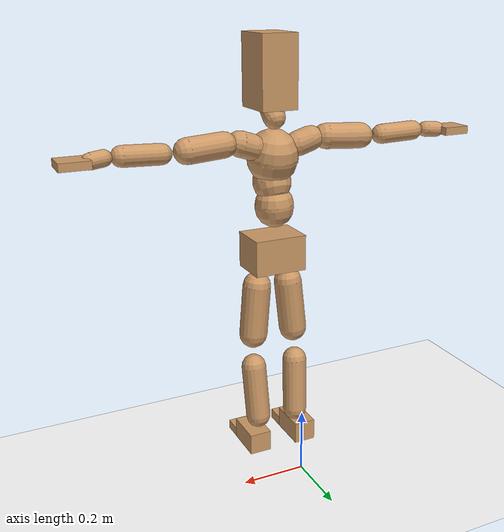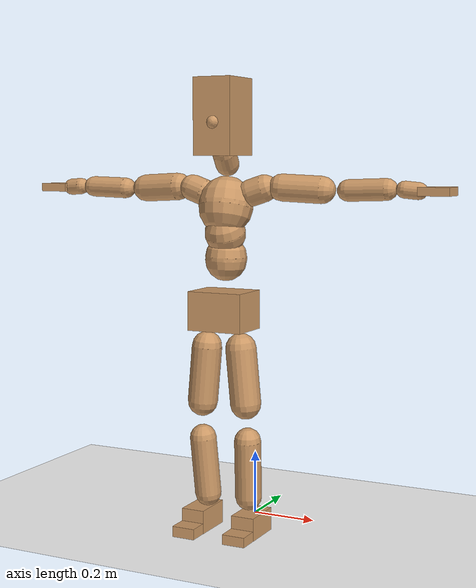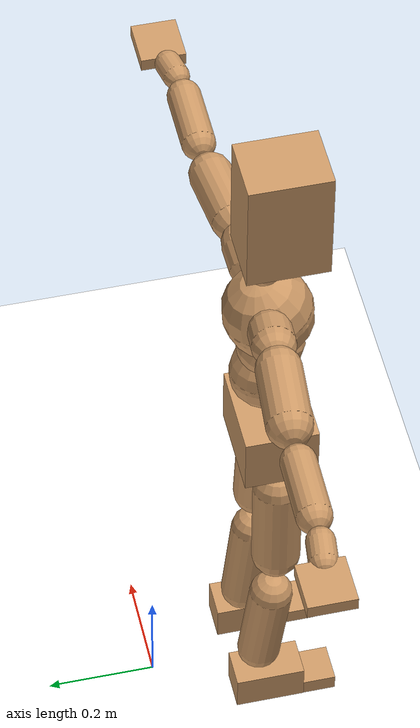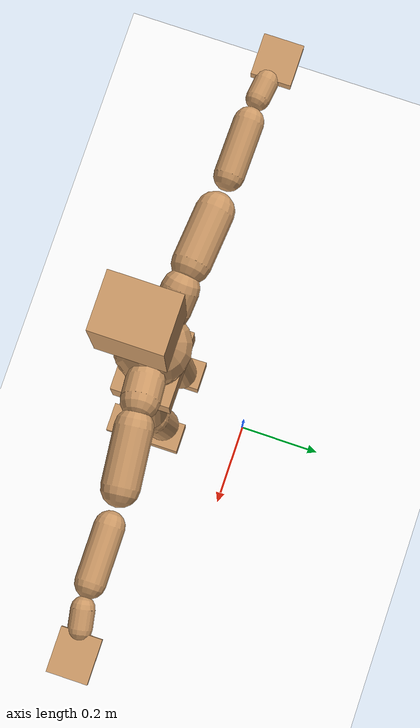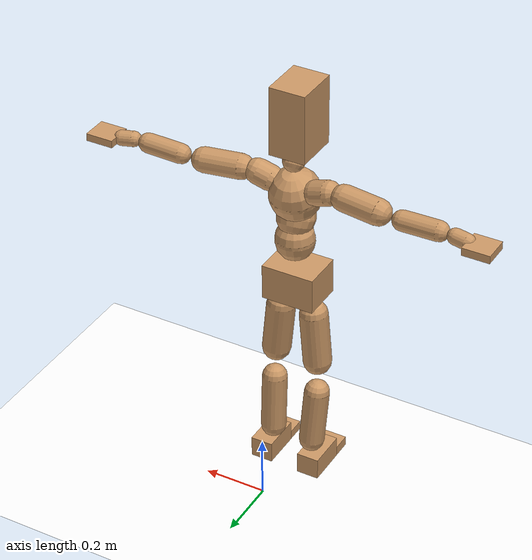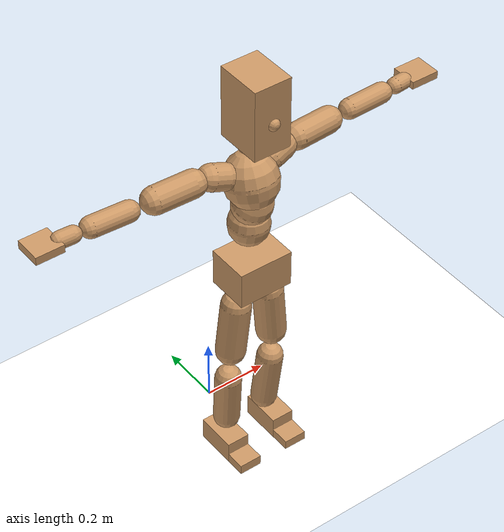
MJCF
<mujoco model="humanoid">
  <option integrator="implicitfast" />

  <visual>
    <global offwidth="1280" offheight="960" />
    <headlight active="1" ambient="0.34 0.34 0.34" diffuse="0.5 0.5 0.5" />
  </visual>

  <default>
    <joint damping="2" stiffness="2" armature="0.01" limited="true" solimplimit="0 .99 .01" />
    <geom condim="1" friction="0.7 0.005 0.0001" solimp=".99 .99 .003" solref="0.015 1" margin="0.001" rgba="0.8 0.6 .4 1" />
    <default class="smplcontact">
      <geom condim="3" friction="1. 0.005 0.0001" solref="0.015 1" solimp="0.98 0.98 0.001" priority="1" />
    </default>
    <default class="stiff_medium">
      <joint stiffness="10" />
    </default>
    <default class="stiff_medium_higher">
      <joint stiffness="50" />
    </default>
    <default class="stiff_high">
      <joint stiffness="100" />
    </default>
  </default>

  <asset>
    <texture type="skybox" builtin="gradient" rgb1="0.99 0.99 0.99" rgb2="0.608 0.828 0.892" width="100" />
    <texture builtin="flat" height="1278" mark="cross" markrgb="1 1 1" name="texgeom" random="0.01" rgb1="0.8 0.6 0.4" rgb2="0.8 0.6 0.4" type="cube" width="127" />
    <texture name="texplane" type="2d" builtin="checker" markrgb="1 1 1" rgb1="0.756 0.772 0.76" rgb2="0.6 0.6 0.6" width="100" height="100" />
    <material name="MatPlane" reflectance="0.5" texture="texplane" texrepeat="1 1" texuniform="true" />
    <material name="geom" texture="texgeom" texuniform="true" />
  </asset>

  <worldbody>
    <light name="tracking_light" pos="0 0 7" dir="0 0 -1" directional="true" cutoff="100" exponent="1" diffuse="1 1 1" specular="0.1 0.1 0.1" mode="trackcom" />
    <camera name="back" pos="0 3 2.4" xyaxes="-1 0 0 0 -1 2" mode="trackcom" />
    <camera name="side" pos="-3 0 2.4" xyaxes="0 -1 0 1 0 2" mode="trackcom" />
    <camera name="front_side" pos="-2.8 -2.8 0.8" xyaxes="0.5 -0.5 0 0.1 0.1 1" mode="trackcom" />
    <geom condim="3" name="floor" pos="0 0 0" rgba="1 1 1 1" size="100 100 .2" type="plane" material="MatPlane" />
    <body name="Pelvis" pos="-0.0018 -0.2233 0.692113" euler="90 0 0">
      <site name="Pelvis" size="0.01" />
      <freejoint name="Pelvis" />
      <geom type="box" pos="-0.0000 -0.0121 -0.0055" size="0.0856923 0.0578764 0.0665338" quat="1.0000 0.0000 0.0000 0.0000" density="3165.830099" name="Pelvis" />
      <body name="L_Hip" pos="0.0513263 -0.0674997 -0.00502186">
        <joint name="L_Hip_x" type="hinge" pos="0 0 0" axis="1 0 0" stiffness="10" range="-160.0 22.92" class="stiff_medium" damping="15" />
        <joint name="L_Hip_y" type="hinge" pos="0 0 0" axis="0 1 0" stiffness="10" range="-70.0 70.0" class="stiff_medium" damping="10" />
        <joint name="L_Hip_z" type="hinge" pos="0 0 0" axis="0 0 1" stiffness="10" range="-28.65 90.0" class="stiff_medium" damping="10" />
        <geom type="capsule" density="2040.816327" fromto="0.00509571 -0.0553881 -0.000664658 0.0202351 -0.2217 -0.00265863" size="0.0458719" name="L_Hip" />
        <body name="L_Knee" pos="0.0253308 -0.277088 -0.00332329">
          <joint name="L_Knee_x" type="hinge" pos="0 0 0" axis="1 0 0" range="-5.16 171.89" damping="8" />
          <joint name="L_Knee_y" type="hinge" pos="0 0 0" axis="0 1 0" range="-4.58 6.88" damping="8" />
          <joint name="L_Knee_z" type="hinge" pos="0 0 0" axis="0 0 1" range="-6.88 4.58" damping="8" />
          <geom type="capsule" density="1234.567901" fromto="-0.00199397 -0.0587853 -0.00642502 -0.00804974 -0.235141 -0.0258478" size="0.0403524" name="L_Knee" />
          <body name="L_Ankle" pos="-0.0100437 -0.293926 -0.0322728">
            <joint name="L_Ankle_x" type="hinge" pos="0 0 0" axis="1 0 0" range="-45.84 45.84" class="stiff_medium" damping="6" />
            <joint name="L_Ankle_y" type="hinge" pos="0 0 0" axis="0 1 0" range="-74.48 22.92" class="stiff_medium" damping="3" />
            <joint name="L_Ankle_z" type="hinge" pos="0 0 0" axis="0 0 1" range="-4.58 4.58" class="stiff_medium" damping="6" />
            <geom type="box" pos="0.0172072 -0.0176503 0.0178719" size="0.0360262 0.034609 0.0634002" quat="1.0000 0.0000 0.0000 0.0000" density="449.071558" name="L_Ankle" class="smplcontact" />
            <body name="L_Toe" pos="0.0194966 -0.0412088 0.088104">
              <joint name="L_Toe_x" type="hinge" pos="0 0 0" axis="1 0 0" range="-91.67 22.92" />
              <joint name="L_Toe_y" type="hinge" pos="0 0 0" axis="0 1 0" range="-4.58 4.58" />
              <joint name="L_Toe_z" type="hinge" pos="0 0 0" axis="0 0 1" range="-4.58 4.58" />
              <geom type="box" pos="-0.00221553 0.0040618 0.018315" size="0.0356533 0.0149177 0.0369959" quat="1.0000 0.0000 0.0000 0.0000" density="423.206892" name="L_Toe" class="smplcontact" />
            </body>
          </body>
        </body>
      </body>
      <body name="R_Hip" pos="-0.049997 -0.066835 -0.00317559">
        <joint name="R_Hip_x" type="hinge" pos="0 0 0" axis="1 0 0" stiffness="10" range="-160.0 22.92" class="stiff_medium" damping="15" />
        <joint name="R_Hip_y" type="hinge" pos="0 0 0" axis="0 1 0" stiffness="10" range="-70.0 70.0" class="stiff_medium" damping="10" />
        <joint name="R_Hip_z" type="hinge" pos="0 0 0" axis="0 0 1" stiffness="10" range="-90.0 28.65" class="stiff_medium" damping="10" />
        <geom type="capsule" density="2040.816327" fromto="-0.00568651 -0.0564959 -0.00132932 -0.0225984 -0.226057 -0.00524341" size="0.0452006" name="R_Hip" />
        <body name="R_Knee" pos="-0.0282849 -0.282553 -0.00657272">
          <joint name="R_Knee_x" type="hinge" pos="0 0 0" axis="1 0 0" range="-5.16 171.89" damping="8" />
          <joint name="R_Knee_y" type="hinge" pos="0 0 0" axis="0 1 0" range="-6.88 4.58" damping="8" />
          <joint name="R_Knee_z" type="hinge" pos="0 0 0" axis="0 0 1" range="-4.58 6.88" damping="8" />
          <geom type="capsule" density="1234.567901" fromto="0.00236323 -0.0588591 -0.00627732 0.00930521 -0.235363 -0.0249616" size="0.0403524" name="R_Knee" />
          <body name="R_Ankle" pos="0.0116684 -0.294222 -0.0312389">
            <joint name="R_Ankle_x" type="hinge" pos="0 0 0" axis="1 0 0" range="-45.84 45.84" class="stiff_medium" damping="6" />
            <joint name="R_Ankle_y" type="hinge" pos="0 0 0" axis="0 1 0" range="-22.92 74.48" class="stiff_medium" damping="3" />
            <joint name="R_Ankle_z" type="hinge" pos="0 0 0" axis="0 0 1" range="-4.58 4.58" class="stiff_medium" damping="6" />
            <geom type="box" pos="-0.0156564 -0.01285 0.0189058" size="0.0360262 0.0356533 0.064519" quat="1.0000 0.0000 0.0000 0.0000" density="434.700981" name="R_Ankle" class="smplcontact" />
            <body name="R_Toe" pos="-0.0187581 -0.0355223 0.0910581">
              <joint name="R_Toe_x" type="hinge" pos="0 0 0" axis="1 0 0" range="-91.67 22.92" />
              <joint name="R_Toe_y" type="hinge" pos="0 0 0" axis="0 1 0" range="-4.58 4.58" />
              <joint name="R_Toe_z" type="hinge" pos="0 0 0" axis="0 0 1" range="-4.58 4.58" />
              <geom type="box" pos="0.00310174 0.00332329 0.0167641" size="0.0357279 0.0161111 0.0367721" quat="1.0000 0.0000 0.0000 0.0000" density="407.384095" name="R_Toe" class="smplcontact" />
            </body>
          </body>
        </body>
      </body>
      <body name="Torso" pos="-0.00198421 0.0865116 -0.0211914">
        <joint name="Torso_x" type="hinge" pos="0 0 0" axis="1 0 0" range="-25.78 57.3" class="stiff_medium" damping="15" />
        <joint name="Torso_y" type="hinge" pos="0 0 0" axis="0 1 0" range="-57.3 57.3" class="stiff_high" damping="20" />
        <joint name="Torso_z" type="hinge" pos="0 0 0" axis="0 0 1" range="-34.38 34.38" class="stiff_high" damping="20" />
        <geom type="capsule" density="2040.816327" fromto="0.00198421 0.048256 0.000396842 0.00238105 0.0589708 0.000476211" size="0.061644" name="Torso" />
        <body name="Spine" pos="0.00436527 0.107306 0.000873053">
          <joint name="Spine_x" type="hinge" pos="0 0 0" axis="1 0 0" stiffness="10" range="-25.78 57.3" class="stiff_medium" damping="15" />
          <joint name="Spine_y" type="hinge" pos="0 0 0" axis="0 1 0" stiffness="10" range="-57.3 57.3" class="stiff_high" damping="8" />
          <joint name="Spine_z" type="hinge" pos="0 0 0" axis="0 0 1" stiffness="20" range="-34.38 34.38" class="stiff_high" damping="12" />
          <geom type="capsule" density="2040.816327" fromto="0.000555579 0.0188897 0.009048 0.000634948 0.0230962 0.0111116" size="0.0605217" name="Spine" />
          <body name="Chest" pos="0.00119053 0.0419859 0.0201596">
            <joint name="Chest_x" type="hinge" pos="0 0 0" axis="1 0 0" stiffness="10" range="-25.78 57.3" class="stiff_medium" damping="15" />
            <joint name="Chest_y" type="hinge" pos="0 0 0" axis="0 1 0" stiffness="10" range="-57.3 57.3" class="stiff_high" damping="8" />
            <joint name="Chest_z" type="hinge" pos="0 0 0" axis="0 0 1" stiffness="20" range="-34.38 34.38" class="stiff_high" damping="12" />
            <geom type="capsule" density="2040.816327" fromto="-0.000714316 0.0541293 -0.0137307 -0.000793685 0.0661139 -0.0168261" size="0.0803215" name="Chest" />
            <body name="Neck" pos="-0.00222232 0.169769 -0.0340491">
              <joint name="Neck_x" type="hinge" pos="0 0 0" axis="1 0 0" range="-28.65 57.3" class="stiff_medium_higher" damping="10" />
              <joint name="Neck_y" type="hinge" pos="0 0 0" axis="0 1 0" range="-40.11 40.11" class="stiff_medium_higher" damping="10" />
              <joint name="Neck_z" type="hinge" pos="0 0 0" axis="0 0 1" range="-40.11 40.11" class="stiff_medium_higher" damping="10" />
              <geom type="capsule" density="1000" fromto="0.000793685 0.0103179 0.00817495 0.00325411 0.0412716 0.0326204" size="0.0349503" name="Neck" />
              <body name="Head" pos="0.0049617 0.0620213 0.0489491">
                <joint name="Head_x" type="hinge" pos="0 0 0" axis="1 0 0" range="-28.65 57.3" class="stiff_medium_higher" damping="2" />
                <joint name="Head_y" type="hinge" pos="0 0 0" axis="0 1 0" range="-40.11 40.11" class="stiff_medium_higher" damping="2" />
                <joint name="Head_z" type="hinge" pos="0 0 0" axis="0 0 1" range="-40.11 40.11" class="stiff_medium_higher" damping="2" />
                <geom type="box" pos="-0.00400753 0.0835856 -0.0110684" size="0.0584005 0.111211 0.0732415" quat="1.0000 0.0000 0.0000 0.0000" density="1018.069894" name="Head" />
                <geom type="capsule" name="nose" size="0.0192741 0.00963704" pos="0 0.0667922 0.0477087" quat="1 0 0 0" mass="0" contype="0" conaffinity="0" />
              </body>
            </body>
            <body name="L_Thorax" pos="0.0599557 0.0925965 -0.0259453">
              <joint name="L_Thorax_x" type="hinge" pos="0 0 0" axis="1 0 0" range="-10.89 4.58" class="stiff_medium_higher" damping="20" />
              <joint name="L_Thorax_y" type="hinge" pos="0 0 0" axis="0 1 0" range="-28.65 17.19" class="stiff_medium_higher" damping="20" />
              <joint name="L_Thorax_z" type="hinge" pos="0 0 0" axis="0 0 1" range="-31.51 40.11" class="stiff_medium_higher" damping="20" />
              <geom type="capsule" density="1000" fromto="0.0138476 0.00464124 -0.00136955 0.0553905 0.018565 -0.0054021" size="0.0400367" name="L_Thorax" />
              <body name="L_Shoulder" pos="0.0692381 0.0232062 -0.00677164">
                <joint name="L_Shoulder_x" type="hinge" pos="0 0 0" axis="1 0 0" range="-97.4 97.4" class="stiff_medium" damping="6" />
                <joint name="L_Shoulder_y" type="hinge" pos="0 0 0" axis="0 1 0" range="-108.86 80.21" class="stiff_medium" damping="6" />
                <joint name="L_Shoulder_z" type="hinge" pos="0 0 0" axis="0 0 1" range="-97.4 85.94" class="stiff_medium" damping="6" />
                <geom type="capsule" density="1000" fromto="0.0394886 -0.00197823 -0.00418472 0.15803 -0.00776076 -0.0167389" size="0.0397293" name="L_Shoulder" />
                <body name="L_Elbow" pos="0.197519 -0.00973899 -0.0209236">
                  <joint name="L_Elbow_x" type="hinge" pos="0 0 0" axis="1 0 0" range="-17.19 4.58" damping="5" />
                  <joint name="L_Elbow_y" type="hinge" pos="0 0 0" axis="0 1 0" range="-180.0 17.19" damping="5" />
                  <joint name="L_Elbow_z" type="hinge" pos="0 0 0" axis="0 0 1" range="-100.84 4.58" damping="5" />
                  <geom type="capsule" density="1000" fromto="0.0378908 0.00136955 -0.000152172 0.151715 0.00547818 -0.000684773" size="0.0311226" name="L_Elbow" />
                  <body name="L_Wrist" pos="0.189606 0.00684773 -0.000913031">
                    <joint name="L_Wrist_x" type="hinge" pos="0 0 0" axis="1 0 0" range="-180.0 22.92" />
                    <joint name="L_Wrist_y" type="hinge" pos="0 0 0" axis="0 1 0" range="-17.19 17.19" />
                    <joint name="L_Wrist_z" type="hinge" pos="0 0 0" axis="0 0 1" range="-22.92 22.92" />
                    <geom type="capsule" density="1000" fromto="0.0127824 -0.00121737 -0.00228258 0.0511297 -0.00494558 -0.00913031" size="0.024437" name="L_Wrist" class="smplcontact" />
                    <body name="L_Hand" pos="0.0639121 -0.00623904 -0.0113368">
                      <joint name="L_Hand_x" type="hinge" pos="0 0 0" axis="1 0 0" range="-17.19 17.19" />
                      <joint name="L_Hand_y" type="hinge" pos="0 0 0" axis="0 1 0" range="-51.57 51.57" />
                      <joint name="L_Hand_z" type="hinge" pos="0 0 0" axis="0 0 1" range="-91.67 91.67" />
                      <geom type="box" pos="0.0375103 0.000760859 -0.00441298" size="0.0449548 0.0121416 0.0413431" quat="1.0000 0.0000 0.0000 0.0000" density="400.552564" name="L_Hand" class="smplcontact" />
                    </body>
                  </body>
                </body>
              </body>
            </body>
            <body name="R_Thorax" pos="-0.0622382 0.09039 -0.0293691">
              <joint name="R_Thorax_x" type="hinge" pos="0 0 0" axis="1 0 0" range="-10.89 4.58" class="stiff_medium_higher" damping="20" />
              <joint name="R_Thorax_y" type="hinge" pos="0 0 0" axis="0 1 0" range="-17.19 28.65" class="stiff_medium_higher" damping="20" />
              <joint name="R_Thorax_z" type="hinge" pos="0 0 0" axis="0 0 1" range="-40.11 31.51" class="stiff_medium_higher" damping="20" />
              <geom type="capsule" density="1000" fromto="-0.0146085 0.00494558 -0.00136955 -0.058434 0.0197823 -0.00555427" size="0.0392682" name="R_Thorax" />
              <body name="R_Shoulder" pos="-0.0730424 0.024804 -0.00692381">
                <joint name="R_Shoulder_x" type="hinge" pos="0 0 0" axis="1 0 0" range="-97.4 97.4" class="stiff_medium" damping="6" />
                <joint name="R_Shoulder_y" type="hinge" pos="0 0 0" axis="0 1 0" range="-80.21 108.86" class="stiff_medium" damping="6" />
                <joint name="R_Shoulder_z" type="hinge" pos="0 0 0" axis="0 0 1" range="-85.94 97.4" class="stiff_medium" damping="6" />
                <geom type="capsule" density="1000" fromto="-0.0385755 -0.00205432 -0.00327169 -0.154454 -0.00814119 -0.0130107" size="0.0408051" name="R_Shoulder" />
                <body name="R_Elbow" pos="-0.19303 -0.0101194 -0.0162824">
                  <joint name="R_Elbow_x" type="hinge" pos="0 0 0" axis="1 0 0" range="-17.19 4.58" damping="5" />
                  <joint name="R_Elbow_y" type="hinge" pos="0 0 0" axis="0 1 0" range="-17.19 180.0" damping="5" />
                  <joint name="R_Elbow_z" type="hinge" pos="0 0 0" axis="0 0 1" range="-4.58 100.84" damping="5" />
                  <geom type="capsule" density="1000" fromto="-0.0388799 0.00121737 -0.000836945 -0.155367 0.00471732 -0.00334778" size="0.0313531" name="R_Elbow" />
                  <body name="R_Wrist" pos="-0.194247 0.0059347 -0.00426081">
                    <joint name="R_Wrist_x" type="hinge" pos="0 0 0" axis="1 0 0" range="-180.0 22.92" />
                    <joint name="R_Wrist_y" type="hinge" pos="0 0 0" axis="0 1 0" range="-17.19 17.19" />
                    <joint name="R_Wrist_z" type="hinge" pos="0 0 0" axis="0 0 1" range="-22.92 22.92" />
                    <geom type="capsule" density="1000" fromto="-0.0128585 -0.000913031 -0.0015978 -0.0515101 -0.00372821 -0.00631513" size="0.0250517" name="R_Wrist" class="smplcontact" />
                    <body name="R_Hand" pos="-0.0643687 -0.00464124 -0.00783685">
                      <joint name="R_Hand_x" type="hinge" pos="0 0 0" axis="1 0 0" range="-17.19 17.19" />
                      <joint name="R_Hand_y" type="hinge" pos="0 0 0" axis="0 1 0" range="-51.57 51.57" />
                      <joint name="R_Hand_z" type="hinge" pos="0 0 0" axis="0 0 1" range="-91.67 91.67" />
                      <geom type="box" pos="-0.0351517 -0.000684773 -0.00601078" size="0.0437253 0.0126027 0.0419578" quat="1.0000 0.0000 0.0000 0.0000" density="403.679611" name="R_Hand" class="smplcontact" />
                    </body>
                  </body>
                </body>
              </body>
            </body>
          </body>
        </body>
      </body>
    </body>
  </worldbody>
  <actuator>
    <general name="L_Hip_x" joint="L_Hip_x" biastype="affine" gainprm="287.33006409732246" biasprm="-215.3247604770444 -180 -2.0" ctrllimited="true" ctrlrange="-1 1" forcerange="-360 360" />
    <general name="L_Hip_y" joint="L_Hip_y" biastype="affine" gainprm="219.9114857512855" biasprm="0.0 -180 -2.0" ctrllimited="true" ctrlrange="-1 1" forcerange="-360 360" />
    <general name="L_Hip_z" joint="L_Hip_z" biastype="affine" gainprm="186.3749841742145" biasprm="96.3683546488669 -180 -2.0" ctrllimited="true" ctrlrange="-1 1" forcerange="-360 360" />
    <general name="L_Knee_x" joint="L_Knee_x" biastype="affine" gainprm="278.10948965903646" biasprm="261.8988715665131 -180 -2.0" ctrllimited="true" ctrlrange="-1 1" forcerange="-360 360" />
    <general name="L_Knee_y" joint="L_Knee_y" biastype="affine" gainprm="18.001325905069514" biasprm="3.612831551628262 -180 -2.0" ctrllimited="true" ctrlrange="-1 1" forcerange="-360 360" />
    <general name="L_Knee_z" joint="L_Knee_z" biastype="affine" gainprm="18.001325905069514" biasprm="-3.612831551628262 -180 -2.0" ctrllimited="true" ctrlrange="-1 1" forcerange="-360 360" />
    <general name="L_Ankle_x" joint="L_Ankle_x" biastype="affine" gainprm="72.00530362027807" biasprm="0.0 -90 -2.0" ctrllimited="true" ctrlrange="-1 1" forcerange="-180 180" />
    <general name="L_Ankle_y" joint="L_Ankle_y" biastype="affine" gainprm="76.49778111491148" biasprm="-40.49512930477244 -90 -2.0" ctrllimited="true" ctrlrange="-1 1" forcerange="-180 180" />
    <general name="L_Ankle_z" joint="L_Ankle_z" biastype="affine" gainprm="7.1942471767206255" biasprm="0.0 -90 -2.0" ctrllimited="true" ctrlrange="-1 1" forcerange="-180 180" />
    <general name="L_Toe_x" joint="L_Toe_x" biastype="affine" gainprm="71.99902043497087" biasprm="-43.19689898685965 -72 -0.8" ctrllimited="true" ctrlrange="-1 1" forcerange="-144 144" />
    <general name="L_Toe_y" joint="L_Toe_y" biastype="affine" gainprm="5.755397741376501" biasprm="0.0 -72 -0.8" ctrllimited="true" ctrlrange="-1 1" forcerange="-144 144" />
    <general name="L_Toe_z" joint="L_Toe_z" biastype="affine" gainprm="5.755397741376501" biasprm="0.0 -72 -0.8" ctrllimited="true" ctrlrange="-1 1" forcerange="-144 144" />
    <general name="R_Hip_x" joint="R_Hip_x" biastype="affine" gainprm="287.33006409732246" biasprm="-215.3247604770444 -180 -2.0" ctrllimited="true" ctrlrange="-1 1" forcerange="-360 360" />
    <general name="R_Hip_y" joint="R_Hip_y" biastype="affine" gainprm="219.9114857512855" biasprm="0.0 -180 -2.0" ctrllimited="true" ctrlrange="-1 1" forcerange="-360 360" />
    <general name="R_Hip_z" joint="R_Hip_z" biastype="affine" gainprm="186.3749841742145" biasprm="-96.3683546488669 -180 -2.0" ctrllimited="true" ctrlrange="-1 1" forcerange="-360 360" />
    <general name="R_Knee_x" joint="R_Knee_x" biastype="affine" gainprm="278.10948965903646" biasprm="261.8988715665131 -180 -2.0" ctrllimited="true" ctrlrange="-1 1" forcerange="-360 360" />
    <general name="R_Knee_y" joint="R_Knee_y" biastype="affine" gainprm="18.001325905069514" biasprm="-3.612831551628262 -180 -2.0" ctrllimited="true" ctrlrange="-1 1" forcerange="-360 360" />
    <general name="R_Knee_z" joint="R_Knee_z" biastype="affine" gainprm="18.001325905069514" biasprm="3.612831551628262 -180 -2.0" ctrllimited="true" ctrlrange="-1 1" forcerange="-360 360" />
    <general name="R_Ankle_x" joint="R_Ankle_x" biastype="affine" gainprm="72.00530362027807" biasprm="0.0 -90 -2.0" ctrllimited="true" ctrlrange="-1 1" forcerange="-180 180" />
    <general name="R_Ankle_y" joint="R_Ankle_y" biastype="affine" gainprm="76.49778111491148" biasprm="40.49512930477244 -90 -2.0" ctrllimited="true" ctrlrange="-1 1" forcerange="-180 180" />
    <general name="R_Ankle_z" joint="R_Ankle_z" biastype="affine" gainprm="7.1942471767206255" biasprm="0.0 -90 -2.0" ctrllimited="true" ctrlrange="-1 1" forcerange="-180 180" />
    <general name="R_Toe_x" joint="R_Toe_x" biastype="affine" gainprm="71.99902043497087" biasprm="-43.19689898685965 -72 -0.8" ctrllimited="true" ctrlrange="-1 1" forcerange="-144 144" />
    <general name="R_Toe_y" joint="R_Toe_y" biastype="affine" gainprm="5.755397741376501" biasprm="0.0 -72 -0.8" ctrllimited="true" ctrlrange="-1 1" forcerange="-144 144" />
    <general name="R_Toe_z" joint="R_Toe_z" biastype="affine" gainprm="5.755397741376501" biasprm="0.0 -72 -0.8" ctrllimited="true" ctrlrange="-1 1" forcerange="-144 144" />
    <general name="Torso_x" joint="Torso_x" biastype="affine" gainprm="174.00234510682668" biasprm="66.0153336274335 -240 -4.0" ctrllimited="true" ctrlrange="-1 1" forcerange="-360 360" />
    <general name="Torso_y" joint="Torso_y" biastype="affine" gainprm="240.0176787342602" biasprm="0.0 -240 -4.0" ctrllimited="true" ctrlrange="-1 1" forcerange="-360 360" />
    <general name="Torso_z" joint="Torso_z" biastype="affine" gainprm="144.01060724055614" biasprm="0.0 -240 -4.0" ctrllimited="true" ctrlrange="-1 1" forcerange="-360 360" />
    <general name="Spine_x" joint="Spine_x" biastype="affine" gainprm="174.00234510682668" biasprm="66.0153336274335 -240 -4.0" ctrllimited="true" ctrlrange="-1 1" forcerange="-360 360" />
    <general name="Spine_y" joint="Spine_y" biastype="affine" gainprm="240.0176787342602" biasprm="0.0 -240 -4.0" ctrllimited="true" ctrlrange="-1 1" forcerange="-360 360" />
    <general name="Spine_z" joint="Spine_z" biastype="affine" gainprm="144.01060724055614" biasprm="0.0 -240 -4.0" ctrllimited="true" ctrlrange="-1 1" forcerange="-360 360" />
    <general name="Chest_x" joint="Chest_x" biastype="affine" gainprm="174.00234510682668" biasprm="66.0153336274335 -240 -4.0" ctrllimited="true" ctrlrange="-1 1" forcerange="-360 360" />
    <general name="Chest_y" joint="Chest_y" biastype="affine" gainprm="240.0176787342602" biasprm="0.0 -240 -4.0" ctrllimited="true" ctrlrange="-1 1" forcerange="-360 360" />
    <general name="Chest_z" joint="Chest_z" biastype="affine" gainprm="144.01060724055614" biasprm="0.0 -240 -4.0" ctrllimited="true" ctrlrange="-1 1" forcerange="-360 360" />
    <general name="Neck_x" joint="Neck_x" biastype="affine" gainprm="27.00198885760427" biasprm="9.000662952534757 -36 -0.8" ctrllimited="true" ctrlrange="-1 1" forcerange="-72 72" />
    <general name="Neck_y" joint="Neck_y" biastype="affine" gainprm="25.20185626709732" biasprm="0.0 -36 -0.8" ctrllimited="true" ctrlrange="-1 1" forcerange="-72 72" />
    <general name="Neck_z" joint="Neck_z" biastype="affine" gainprm="25.20185626709732" biasprm="0.0 -36 -0.8" ctrllimited="true" ctrlrange="-1 1" forcerange="-72 72" />
    <general name="Head_x" joint="Head_x" biastype="affine" gainprm="18.001325905069514" biasprm="6.000441968356505 -24 -0.8" ctrllimited="true" ctrlrange="-1 1" forcerange="-48 48" />
    <general name="Head_y" joint="Head_y" biastype="affine" gainprm="16.801237511398213" biasprm="0.0 -24 -0.8" ctrllimited="true" ctrlrange="-1 1" forcerange="-48 48" />
    <general name="Head_z" joint="Head_z" biastype="affine" gainprm="16.801237511398213" biasprm="0.0 -24 -0.8" ctrllimited="true" ctrlrange="-1 1" forcerange="-48 48" />
    <general name="L_Thorax_x" joint="L_Thorax_x" biastype="affine" gainprm="16.200146117011364" biasprm="-6.6078165480505335 -120 -1.6" ctrllimited="true" ctrlrange="-1 1" forcerange="-240 240" />
    <general name="L_Thorax_y" joint="L_Thorax_y" biastype="affine" gainprm="48.00353574685204" biasprm="-12.00088393671301 -120 -1.6" ctrllimited="true" ctrlrange="-1 1" forcerange="-240 240" />
    <general name="L_Thorax_z" joint="L_Thorax_z" biastype="affine" gainprm="75.00028861670033" biasprm="9.00589894029074 -120 -1.6" ctrllimited="true" ctrlrange="-1 1" forcerange="-240 240" />
    <general name="L_Shoulder_x" joint="L_Shoulder_x" biastype="affine" gainprm="81.5976331892389" biasprm="0.0 -48 -1.6" ctrllimited="true" ctrlrange="-1 1" forcerange="-96 96" />
    <general name="L_Shoulder_y" joint="L_Shoulder_y" biastype="affine" gainprm="79.19745640189629" biasprm="-12.00088393671301 -48 -1.6" ctrllimited="true" ctrlrange="-1 1" forcerange="-96 96" />
    <general name="L_Shoulder_z" joint="L_Shoulder_z" biastype="affine" gainprm="76.79727961455369" biasprm="-4.800353574685214 -48 -1.6" ctrllimited="true" ctrlrange="-1 1" forcerange="-96 96" />
    <general name="L_Elbow_x" joint="L_Elbow_x" biastype="affine" gainprm="13.67849441372996" biasprm="-7.923096672353461 -72 -0.8" ctrllimited="true" ctrlrange="-1 1" forcerange="-144 144" />
    <general name="L_Elbow_y" joint="L_Elbow_y" biastype="affine" gainprm="123.89813107227425" biasprm="-102.29653998619085 -72 -0.8" ctrllimited="true" ctrlrange="-1 1" forcerange="-144 144" />
    <general name="L_Elbow_z" joint="L_Elbow_z" biastype="affine" gainprm="66.23733950828719" biasprm="-60.4819417669107 -72 -0.8" ctrllimited="true" ctrlrange="-1 1" forcerange="-144 144" />
    <general name="L_Wrist_x" joint="L_Wrist_x" biastype="affine" gainprm="21.24973270888136" biasprm="-16.449379134196157 -12 -0.8" ctrllimited="true" ctrlrange="-1 1" forcerange="-24 24" />
    <general name="L_Wrist_y" joint="L_Wrist_y" biastype="affine" gainprm="3.6002651810139037" biasprm="0.0 -12 -0.8" ctrllimited="true" ctrlrange="-1 1" forcerange="-24 24" />
    <general name="L_Wrist_z" joint="L_Wrist_z" biastype="affine" gainprm="4.800353574685205" biasprm="0.0 -12 -0.8" ctrllimited="true" ctrlrange="-1 1" forcerange="-24 24" />
    <general name="L_Hand_x" joint="L_Hand_x" biastype="affine" gainprm="3.6002651810139037" biasprm="0.0 -12 -0.8" ctrllimited="true" ctrlrange="-1 1" forcerange="-24 24" />
    <general name="L_Hand_y" joint="L_Hand_y" biastype="affine" gainprm="10.800795543041708" biasprm="0.0 -12 -0.8" ctrllimited="true" ctrlrange="-1 1" forcerange="-24 24" />
    <general name="L_Hand_z" joint="L_Hand_z" biastype="affine" gainprm="19.199319903638422" biasprm="0.0 -12 -0.8" ctrllimited="true" ctrlrange="-1 1" forcerange="-24 24" />
    <general name="R_Thorax_x" joint="R_Thorax_x" biastype="affine" gainprm="16.200146117011364" biasprm="-6.6078165480505335 -120 -1.6" ctrllimited="true" ctrlrange="-1 1" forcerange="-240 240" />
    <general name="R_Thorax_y" joint="R_Thorax_y" biastype="affine" gainprm="48.00353574685204" biasprm="12.000883936713002 -120 -1.6" ctrllimited="true" ctrlrange="-1 1" forcerange="-240 240" />
    <general name="R_Thorax_z" joint="R_Thorax_z" biastype="affine" gainprm="75.00028861670033" biasprm="-9.00589894029074 -120 -1.6" ctrllimited="true" ctrlrange="-1 1" forcerange="-240 240" />
    <general name="R_Shoulder_x" joint="R_Shoulder_x" biastype="affine" gainprm="81.5976331892389" biasprm="0.0 -48 -1.6" ctrllimited="true" ctrlrange="-1 1" forcerange="-96 96" />
    <general name="R_Shoulder_y" joint="R_Shoulder_y" biastype="affine" gainprm="79.19745640189629" biasprm="12.00088393671301 -48 -1.6" ctrllimited="true" ctrlrange="-1 1" forcerange="-96 96" />
    <general name="R_Shoulder_z" joint="R_Shoulder_z" biastype="affine" gainprm="76.79727961455369" biasprm="4.800353574685204 -48 -1.6" ctrllimited="true" ctrlrange="-1 1" forcerange="-96 96" />
    <general name="R_Elbow_x" joint="R_Elbow_x" biastype="affine" gainprm="13.67849441372996" biasprm="-7.923096672353461 -72 -0.8" ctrllimited="true" ctrlrange="-1 1" forcerange="-144 144" />
    <general name="R_Elbow_y" joint="R_Elbow_y" biastype="affine" gainprm="123.89813107227425" biasprm="102.29653998619085 -72 -0.8" ctrllimited="true" ctrlrange="-1 1" forcerange="-144 144" />
    <general name="R_Elbow_z" joint="R_Elbow_z" biastype="affine" gainprm="66.23733950828719" biasprm="60.481941766910694 -72 -0.8" ctrllimited="true" ctrlrange="-1 1" forcerange="-144 144" />
    <general name="R_Wrist_x" joint="R_Wrist_x" biastype="affine" gainprm="21.24973270888136" biasprm="-16.449379134196157 -12 -0.8" ctrllimited="true" ctrlrange="-1 1" forcerange="-24 24" />
    <general name="R_Wrist_y" joint="R_Wrist_y" biastype="affine" gainprm="3.6002651810139037" biasprm="0.0 -12 -0.8" ctrllimited="true" ctrlrange="-1 1" forcerange="-24 24" />
    <general name="R_Wrist_z" joint="R_Wrist_z" biastype="affine" gainprm="4.800353574685205" biasprm="0.0 -12 -0.8" ctrllimited="true" ctrlrange="-1 1" forcerange="-24 24" />
    <general name="R_Hand_x" joint="R_Hand_x" biastype="affine" gainprm="3.6002651810139037" biasprm="0.0 -12 -0.8" ctrllimited="true" ctrlrange="-1 1" forcerange="-24 24" />
    <general name="R_Hand_y" joint="R_Hand_y" biastype="affine" gainprm="10.800795543041708" biasprm="0.0 -12 -0.8" ctrllimited="true" ctrlrange="-1 1" forcerange="-24 24" />
    <general name="R_Hand_z" joint="R_Hand_z" biastype="affine" gainprm="19.199319903638422" biasprm="0.0 -12 -0.8" ctrllimited="true" ctrlrange="-1 1" forcerange="-24 24" />
  </actuator>
  <contact>
    <exclude body1="Torso" body2="Chest" />
    <exclude body1="Head" body2="Chest" />
    <exclude body1="R_Knee" body2="R_Toe" />
    <exclude body1="R_Knee" body2="L_Ankle" />
    <exclude body1="R_Knee" body2="L_Toe" />
    <exclude body1="L_Knee" body2="L_Toe" />
    <exclude body1="L_Knee" body2="R_Ankle" />
    <exclude body1="L_Knee" body2="R_Toe" />
    <exclude body1="L_Shoulder" body2="Chest" />
    <exclude body1="R_Shoulder" body2="Chest" />
  </contact>
  <sensor>
    <framelinvel name="sensor_Pelvis_framelinvel" objtype="xbody" objname="Pelvis" />
    <framelinvel name="sensor_L_Hip_framelinvel" objtype="xbody" objname="L_Hip" />
    <framelinvel name="sensor_L_Knee_framelinvel" objtype="xbody" objname="L_Knee" />
    <framelinvel name="sensor_L_Ankle_framelinvel" objtype="xbody" objname="L_Ankle" />
    <framelinvel name="sensor_L_Toe_framelinvel" objtype="xbody" objname="L_Toe" />
    <framelinvel name="sensor_R_Hip_framelinvel" objtype="xbody" objname="R_Hip" />
    <framelinvel name="sensor_R_Knee_framelinvel" objtype="xbody" objname="R_Knee" />
    <framelinvel name="sensor_R_Ankle_framelinvel" objtype="xbody" objname="R_Ankle" />
    <framelinvel name="sensor_R_Toe_framelinvel" objtype="xbody" objname="R_Toe" />
    <framelinvel name="sensor_Torso_framelinvel" objtype="xbody" objname="Torso" />
    <framelinvel name="sensor_Spine_framelinvel" objtype="xbody" objname="Spine" />
    <framelinvel name="sensor_Chest_framelinvel" objtype="xbody" objname="Chest" />
    <framelinvel name="sensor_Neck_framelinvel" objtype="xbody" objname="Neck" />
    <framelinvel name="sensor_Head_framelinvel" objtype="xbody" objname="Head" />
    <framelinvel name="sensor_L_Thorax_framelinvel" objtype="xbody" objname="L_Thorax" />
    <framelinvel name="sensor_L_Shoulder_framelinvel" objtype="xbody" objname="L_Shoulder" />
    <framelinvel name="sensor_L_Elbow_framelinvel" objtype="xbody" objname="L_Elbow" />
    <framelinvel name="sensor_L_Wrist_framelinvel" objtype="xbody" objname="L_Wrist" />
    <framelinvel name="sensor_L_Hand_framelinvel" objtype="xbody" objname="L_Hand" />
    <framelinvel name="sensor_R_Thorax_framelinvel" objtype="xbody" objname="R_Thorax" />
    <framelinvel name="sensor_R_Shoulder_framelinvel" objtype="xbody" objname="R_Shoulder" />
    <framelinvel name="sensor_R_Elbow_framelinvel" objtype="xbody" objname="R_Elbow" />
    <framelinvel name="sensor_R_Wrist_framelinvel" objtype="xbody" objname="R_Wrist" />
    <framelinvel name="sensor_R_Hand_framelinvel" objtype="xbody" objname="R_Hand" />
    <frameangvel name="sensor_Pelvis_frameangvel" objtype="xbody" objname="Pelvis" />
    <frameangvel name="sensor_L_Hip_frameangvel" objtype="xbody" objname="L_Hip" />
    <frameangvel name="sensor_L_Knee_frameangvel" objtype="xbody" objname="L_Knee" />
    <frameangvel name="sensor_L_Ankle_frameangvel" objtype="xbody" objname="L_Ankle" />
    <frameangvel name="sensor_L_Toe_frameangvel" objtype="xbody" objname="L_Toe" />
    <frameangvel name="sensor_R_Hip_frameangvel" objtype="xbody" objname="R_Hip" />
    <frameangvel name="sensor_R_Knee_frameangvel" objtype="xbody" objname="R_Knee" />
    <frameangvel name="sensor_R_Ankle_frameangvel" objtype="xbody" objname="R_Ankle" />
    <frameangvel name="sensor_R_Toe_frameangvel" objtype="xbody" objname="R_Toe" />
    <frameangvel name="sensor_Torso_frameangvel" objtype="xbody" objname="Torso" />
    <frameangvel name="sensor_Spine_frameangvel" objtype="xbody" objname="Spine" />
    <frameangvel name="sensor_Chest_frameangvel" objtype="xbody" objname="Chest" />
    <frameangvel name="sensor_Neck_frameangvel" objtype="xbody" objname="Neck" />
    <frameangvel name="sensor_Head_frameangvel" objtype="xbody" objname="Head" />
    <frameangvel name="sensor_L_Thorax_frameangvel" objtype="xbody" objname="L_Thorax" />
    <frameangvel name="sensor_L_Shoulder_frameangvel" objtype="xbody" objname="L_Shoulder" />
    <frameangvel name="sensor_L_Elbow_frameangvel" objtype="xbody" objname="L_Elbow" />
    <frameangvel name="sensor_L_Wrist_frameangvel" objtype="xbody" objname="L_Wrist" />
    <frameangvel name="sensor_L_Hand_frameangvel" objtype="xbody" objname="L_Hand" />
    <frameangvel name="sensor_R_Thorax_frameangvel" objtype="xbody" objname="R_Thorax" />
    <frameangvel name="sensor_R_Shoulder_frameangvel" objtype="xbody" objname="R_Shoulder" />
    <frameangvel name="sensor_R_Elbow_frameangvel" objtype="xbody" objname="R_Elbow" />
    <frameangvel name="sensor_R_Wrist_frameangvel" objtype="xbody" objname="R_Wrist" />
    <frameangvel name="sensor_R_Hand_frameangvel" objtype="xbody" objname="R_Hand" />
    <subtreelinvel name="Chest_subtreelinvel" body="Chest" />
    <gyro name="Pelvis_gyro" site="Pelvis" />
  </sensor>
</mujoco>
